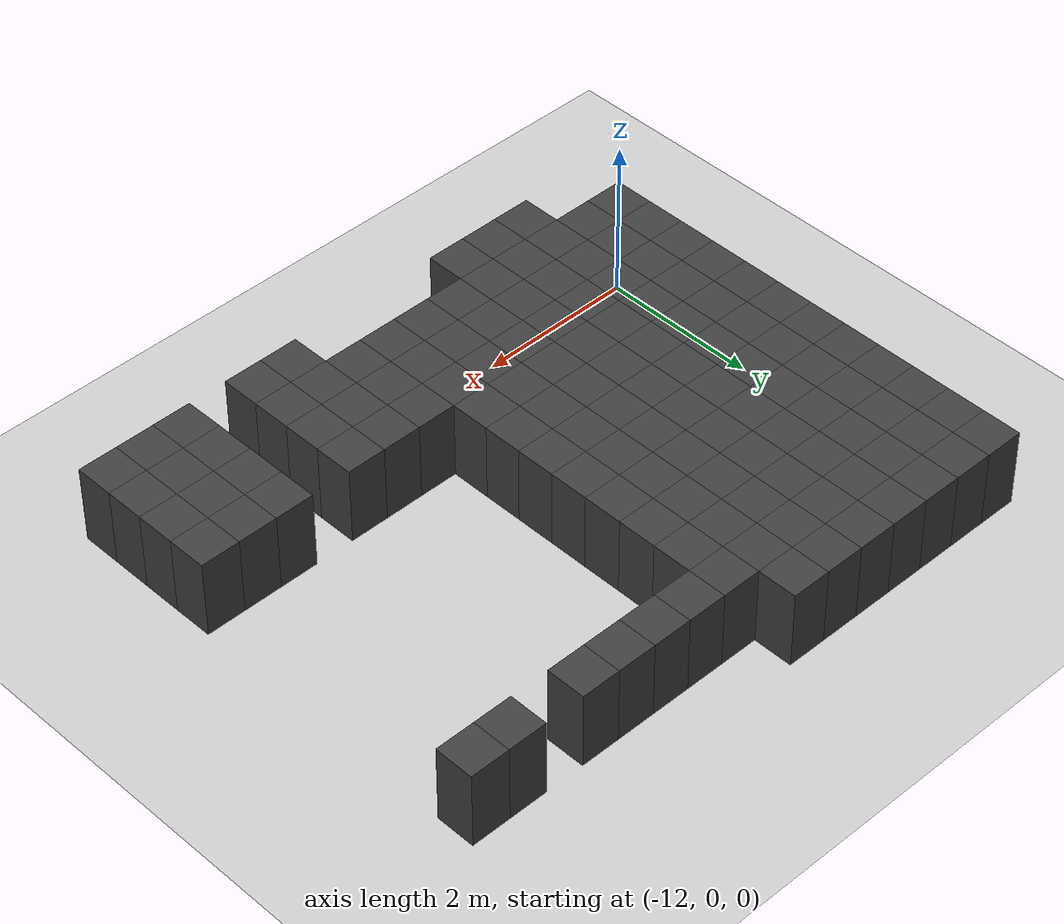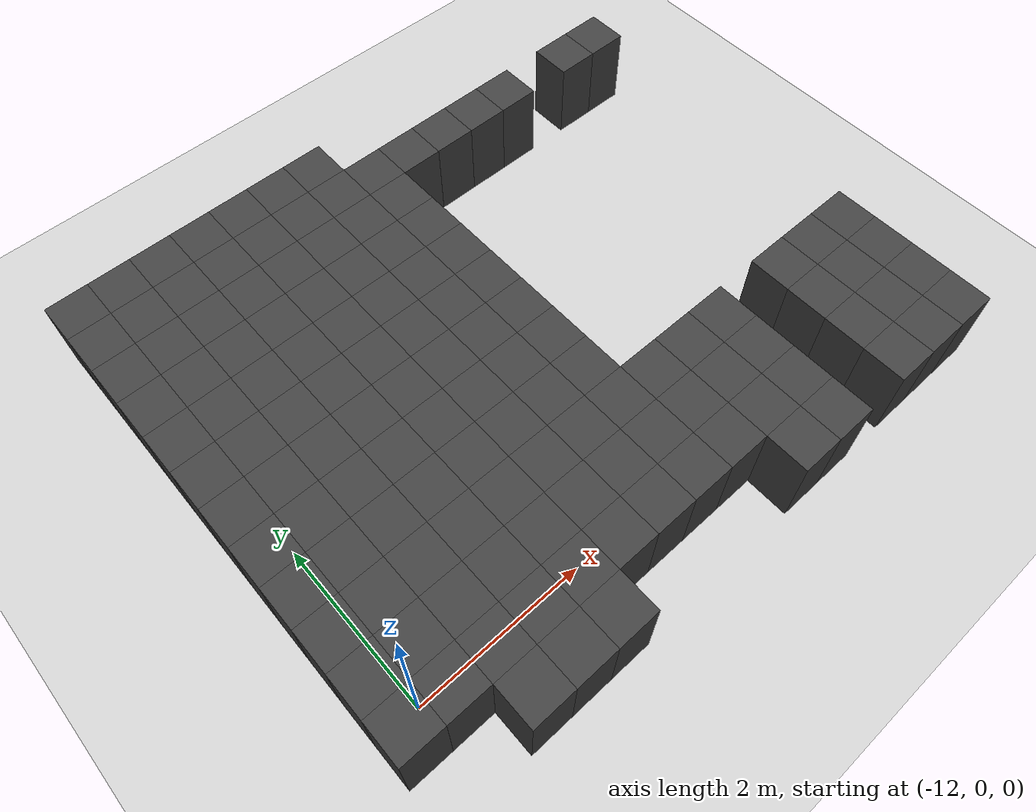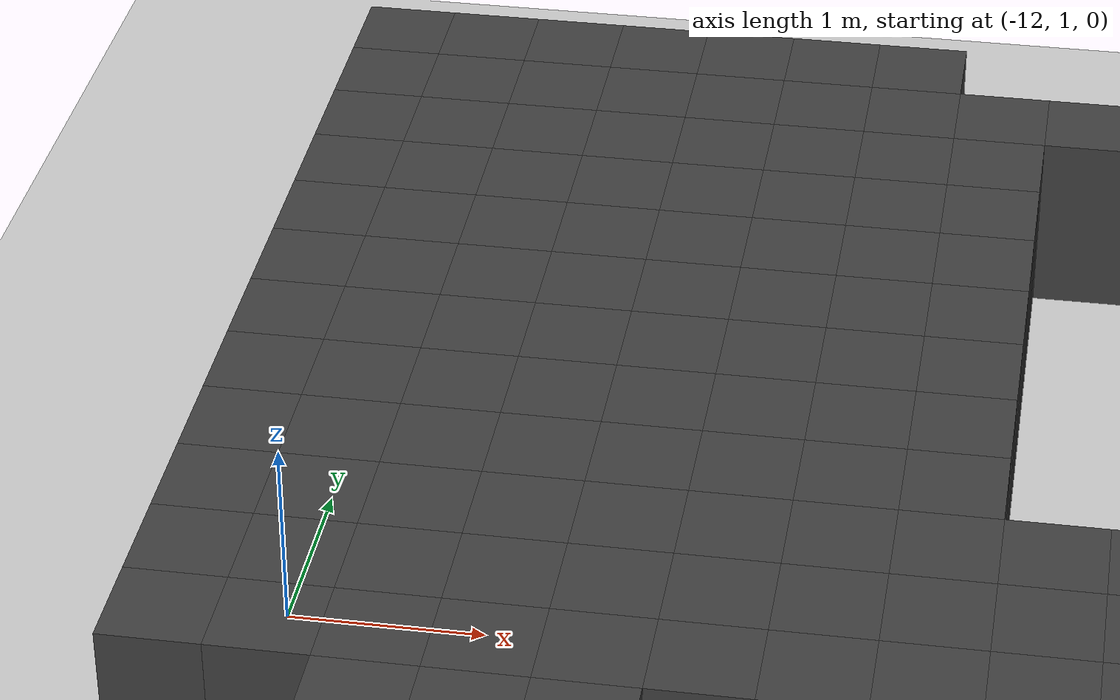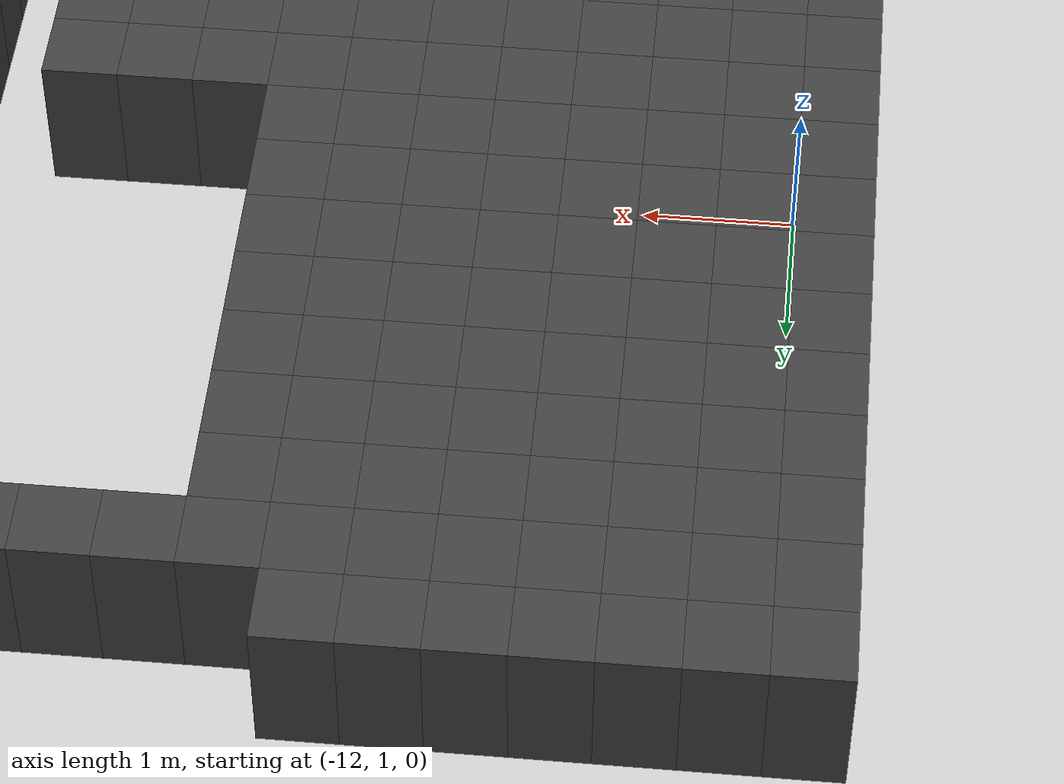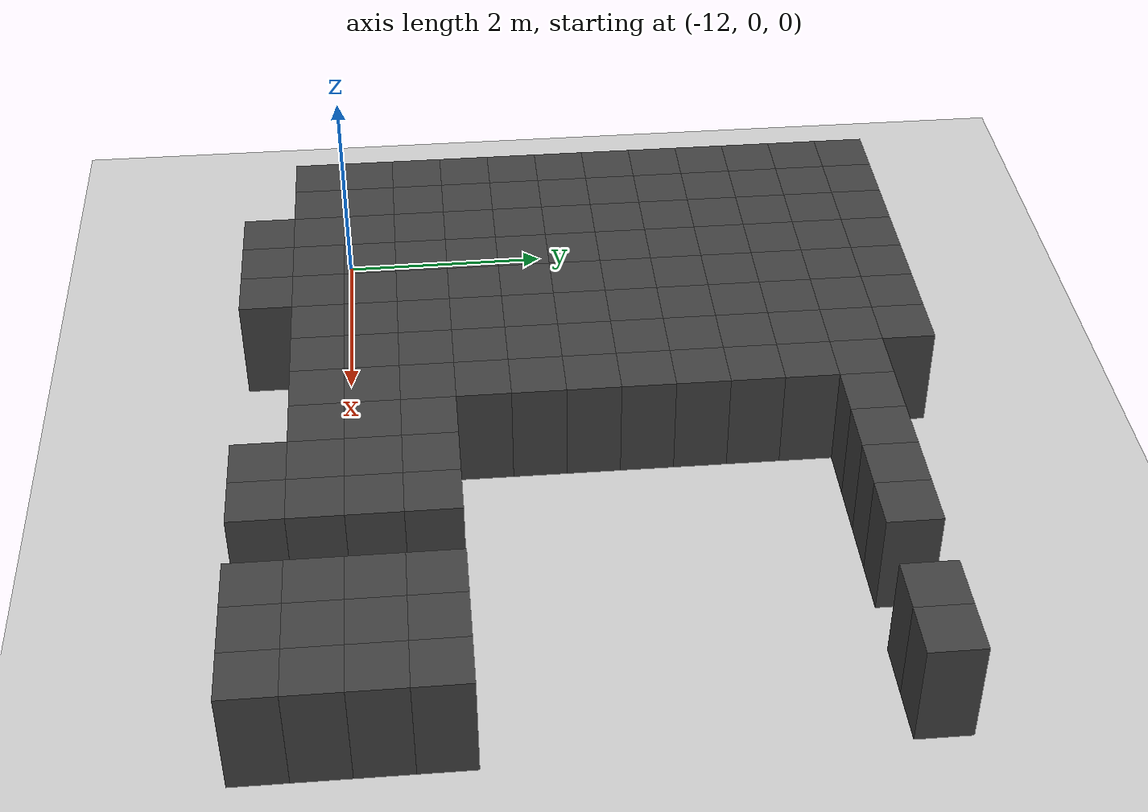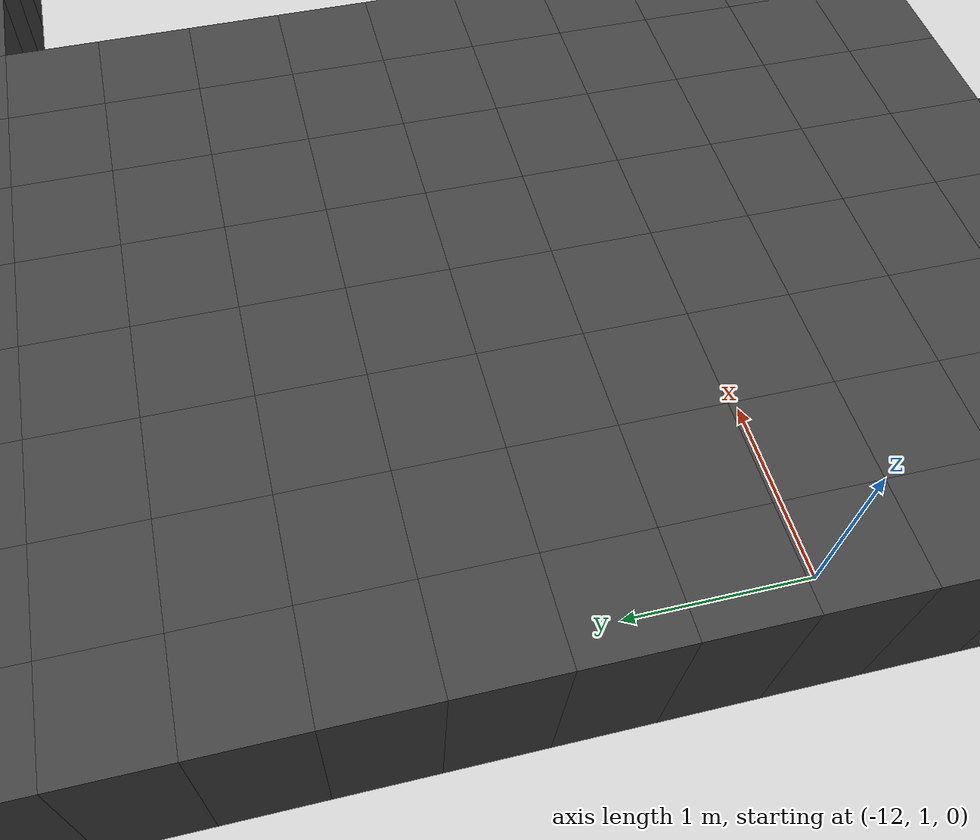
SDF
<sdf version="1.7">
 <world name="map_12356">
  <model name="ground_plane">
   <static>true</static>
   <link name="link">
    <collision name="collision">
     <geometry><plane><normal>0 0 1</normal><size>200 200</size></plane></geometry>
    </collision>
    <visual name="visual">
     <geometry><plane><normal>0 0 1</normal><size>200 200</size></plane></geometry>
     <material><ambient>0.8 0.8 0.8 1</ambient><diffuse>0.8 0.8 0.8 1</diffuse></material>
    </visual>
   </link>
  </model>
  <model name="maze_environment">
   <static>true</static>
   <link name="wall_514">
    <pose>-12.250 5.250 0.500 0 0 0</pose>
    <collision name="col"><geometry><box><size>0.5 0.5 1.0</size></box></geometry></collision>
    <visual name="vis">
     <geometry><box><size>0.5 0.5 1.0</size></box></geometry>
     <material><ambient>0.15 0.15 0.15 1</ambient><diffuse>0.25 0.25 0.25 1</diffuse></material>
    </visual>
   </link>
   <link name="wall_515">
    <pose>-11.750 5.250 0.500 0 0 0</pose>
    <collision name="col"><geometry><box><size>0.5 0.5 1.0</size></box></geometry></collision>
    <visual name="vis">
     <geometry><box><size>0.5 0.5 1.0</size></box></geometry>
     <material><ambient>0.15 0.15 0.15 1</ambient><diffuse>0.25 0.25 0.25 1</diffuse></material>
    </visual>
   </link>
   <link name="wall_516">
    <pose>-11.250 5.250 0.500 0 0 0</pose>
    <collision name="col"><geometry><box><size>0.5 0.5 1.0</size></box></geometry></collision>
    <visual name="vis">
     <geometry><box><size>0.5 0.5 1.0</size></box></geometry>
     <material><ambient>0.15 0.15 0.15 1</ambient><diffuse>0.25 0.25 0.25 1</diffuse></material>
    </visual>
   </link>
   <link name="wall_517">
    <pose>-10.750 5.250 0.500 0 0 0</pose>
    <collision name="col"><geometry><box><size>0.5 0.5 1.0</size></box></geometry></collision>
    <visual name="vis">
     <geometry><box><size>0.5 0.5 1.0</size></box></geometry>
     <material><ambient>0.15 0.15 0.15 1</ambient><diffuse>0.25 0.25 0.25 1</diffuse></material>
    </visual>
   </link>
   <link name="wall_518">
    <pose>-10.250 5.250 0.500 0 0 0</pose>
    <collision name="col"><geometry><box><size>0.5 0.5 1.0</size></box></geometry></collision>
    <visual name="vis">
     <geometry><box><size>0.5 0.5 1.0</size></box></geometry>
     <material><ambient>0.15 0.15 0.15 1</ambient><diffuse>0.25 0.25 0.25 1</diffuse></material>
    </visual>
   </link>
   <link name="wall_519">
    <pose>-9.750 5.250 0.500 0 0 0</pose>
    <collision name="col"><geometry><box><size>0.5 0.5 1.0</size></box></geometry></collision>
    <visual name="vis">
     <geometry><box><size>0.5 0.5 1.0</size></box></geometry>
     <material><ambient>0.15 0.15 0.15 1</ambient><diffuse>0.25 0.25 0.25 1</diffuse></material>
    </visual>
   </link>
   <link name="wall_520">
    <pose>-9.250 5.250 0.500 0 0 0</pose>
    <collision name="col"><geometry><box><size>0.5 0.5 1.0</size></box></geometry></collision>
    <visual name="vis">
     <geometry><box><size>0.5 0.5 1.0</size></box></geometry>
     <material><ambient>0.15 0.15 0.15 1</ambient><diffuse>0.25 0.25 0.25 1</diffuse></material>
    </visual>
   </link>
   <link name="wall_558">
    <pose>-12.250 4.750 0.500 0 0 0</pose>
    <collision name="col"><geometry><box><size>0.5 0.5 1.0</size></box></geometry></collision>
    <visual name="vis">
     <geometry><box><size>0.5 0.5 1.0</size></box></geometry>
     <material><ambient>0.15 0.15 0.15 1</ambient><diffuse>0.25 0.25 0.25 1</diffuse></material>
    </visual>
   </link>
   <link name="wall_559">
    <pose>-11.750 4.750 0.500 0 0 0</pose>
    <collision name="col"><geometry><box><size>0.5 0.5 1.0</size></box></geometry></collision>
    <visual name="vis">
     <geometry><box><size>0.5 0.5 1.0</size></box></geometry>
     <material><ambient>0.15 0.15 0.15 1</ambient><diffuse>0.25 0.25 0.25 1</diffuse></material>
    </visual>
   </link>
   <link name="wall_560">
    <pose>-11.250 4.750 0.500 0 0 0</pose>
    <collision name="col"><geometry><box><size>0.5 0.5 1.0</size></box></geometry></collision>
    <visual name="vis">
     <geometry><box><size>0.5 0.5 1.0</size></box></geometry>
     <material><ambient>0.15 0.15 0.15 1</ambient><diffuse>0.25 0.25 0.25 1</diffuse></material>
    </visual>
   </link>
   <link name="wall_561">
    <pose>-10.750 4.750 0.500 0 0 0</pose>
    <collision name="col"><geometry><box><size>0.5 0.5 1.0</size></box></geometry></collision>
    <visual name="vis">
     <geometry><box><size>0.5 0.5 1.0</size></box></geometry>
     <material><ambient>0.15 0.15 0.15 1</ambient><diffuse>0.25 0.25 0.25 1</diffuse></material>
    </visual>
   </link>
   <link name="wall_562">
    <pose>-10.250 4.750 0.500 0 0 0</pose>
    <collision name="col"><geometry><box><size>0.5 0.5 1.0</size></box></geometry></collision>
    <visual name="vis">
     <geometry><box><size>0.5 0.5 1.0</size></box></geometry>
     <material><ambient>0.15 0.15 0.15 1</ambient><diffuse>0.25 0.25 0.25 1</diffuse></material>
    </visual>
   </link>
   <link name="wall_563">
    <pose>-9.750 4.750 0.500 0 0 0</pose>
    <collision name="col"><geometry><box><size>0.5 0.5 1.0</size></box></geometry></collision>
    <visual name="vis">
     <geometry><box><size>0.5 0.5 1.0</size></box></geometry>
     <material><ambient>0.15 0.15 0.15 1</ambient><diffuse>0.25 0.25 0.25 1</diffuse></material>
    </visual>
   </link>
   <link name="wall_564">
    <pose>-9.250 4.750 0.500 0 0 0</pose>
    <collision name="col"><geometry><box><size>0.5 0.5 1.0</size></box></geometry></collision>
    <visual name="vis">
     <geometry><box><size>0.5 0.5 1.0</size></box></geometry>
     <material><ambient>0.15 0.15 0.15 1</ambient><diffuse>0.25 0.25 0.25 1</diffuse></material>
    </visual>
   </link>
   <link name="wall_565">
    <pose>-8.750 4.750 0.500 0 0 0</pose>
    <collision name="col"><geometry><box><size>0.5 0.5 1.0</size></box></geometry></collision>
    <visual name="vis">
     <geometry><box><size>0.5 0.5 1.0</size></box></geometry>
     <material><ambient>0.15 0.15 0.15 1</ambient><diffuse>0.25 0.25 0.25 1</diffuse></material>
    </visual>
   </link>
   <link name="wall_566">
    <pose>-8.250 4.750 0.500 0 0 0</pose>
    <collision name="col"><geometry><box><size>0.5 0.5 1.0</size></box></geometry></collision>
    <visual name="vis">
     <geometry><box><size>0.5 0.5 1.0</size></box></geometry>
     <material><ambient>0.15 0.15 0.15 1</ambient><diffuse>0.25 0.25 0.25 1</diffuse></material>
    </visual>
   </link>
   <link name="wall_567">
    <pose>-7.750 4.750 0.500 0 0 0</pose>
    <collision name="col"><geometry><box><size>0.5 0.5 1.0</size></box></geometry></collision>
    <visual name="vis">
     <geometry><box><size>0.5 0.5 1.0</size></box></geometry>
     <material><ambient>0.15 0.15 0.15 1</ambient><diffuse>0.25 0.25 0.25 1</diffuse></material>
    </visual>
   </link>
   <link name="wall_568">
    <pose>-7.250 4.750 0.500 0 0 0</pose>
    <collision name="col"><geometry><box><size>0.5 0.5 1.0</size></box></geometry></collision>
    <visual name="vis">
     <geometry><box><size>0.5 0.5 1.0</size></box></geometry>
     <material><ambient>0.15 0.15 0.15 1</ambient><diffuse>0.25 0.25 0.25 1</diffuse></material>
    </visual>
   </link>
   <link name="wall_569">
    <pose>-6.750 4.750 0.500 0 0 0</pose>
    <collision name="col"><geometry><box><size>0.5 0.5 1.0</size></box></geometry></collision>
    <visual name="vis">
     <geometry><box><size>0.5 0.5 1.0</size></box></geometry>
     <material><ambient>0.15 0.15 0.15 1</ambient><diffuse>0.25 0.25 0.25 1</diffuse></material>
    </visual>
   </link>
   <link name="wall_570">
    <pose>-5.750 4.750 0.500 0 0 0</pose>
    <collision name="col"><geometry><box><size>0.5 0.5 1.0</size></box></geometry></collision>
    <visual name="vis">
     <geometry><box><size>0.5 0.5 1.0</size></box></geometry>
     <material><ambient>0.15 0.15 0.15 1</ambient><diffuse>0.25 0.25 0.25 1</diffuse></material>
    </visual>
   </link>
   <link name="wall_571">
    <pose>-5.250 4.750 0.500 0 0 0</pose>
    <collision name="col"><geometry><box><size>0.5 0.5 1.0</size></box></geometry></collision>
    <visual name="vis">
     <geometry><box><size>0.5 0.5 1.0</size></box></geometry>
     <material><ambient>0.15 0.15 0.15 1</ambient><diffuse>0.25 0.25 0.25 1</diffuse></material>
    </visual>
   </link>
   <link name="wall_584">
    <pose>-12.250 4.250 0.500 0 0 0</pose>
    <collision name="col"><geometry><box><size>0.5 0.5 1.0</size></box></geometry></collision>
    <visual name="vis">
     <geometry><box><size>0.5 0.5 1.0</size></box></geometry>
     <material><ambient>0.15 0.15 0.15 1</ambient><diffuse>0.25 0.25 0.25 1</diffuse></material>
    </visual>
   </link>
   <link name="wall_585">
    <pose>-11.750 4.250 0.500 0 0 0</pose>
    <collision name="col"><geometry><box><size>0.5 0.5 1.0</size></box></geometry></collision>
    <visual name="vis">
     <geometry><box><size>0.5 0.5 1.0</size></box></geometry>
     <material><ambient>0.15 0.15 0.15 1</ambient><diffuse>0.25 0.25 0.25 1</diffuse></material>
    </visual>
   </link>
   <link name="wall_586">
    <pose>-11.250 4.250 0.500 0 0 0</pose>
    <collision name="col"><geometry><box><size>0.5 0.5 1.0</size></box></geometry></collision>
    <visual name="vis">
     <geometry><box><size>0.5 0.5 1.0</size></box></geometry>
     <material><ambient>0.15 0.15 0.15 1</ambient><diffuse>0.25 0.25 0.25 1</diffuse></material>
    </visual>
   </link>
   <link name="wall_587">
    <pose>-10.750 4.250 0.500 0 0 0</pose>
    <collision name="col"><geometry><box><size>0.5 0.5 1.0</size></box></geometry></collision>
    <visual name="vis">
     <geometry><box><size>0.5 0.5 1.0</size></box></geometry>
     <material><ambient>0.15 0.15 0.15 1</ambient><diffuse>0.25 0.25 0.25 1</diffuse></material>
    </visual>
   </link>
   <link name="wall_588">
    <pose>-10.250 4.250 0.500 0 0 0</pose>
    <collision name="col"><geometry><box><size>0.5 0.5 1.0</size></box></geometry></collision>
    <visual name="vis">
     <geometry><box><size>0.5 0.5 1.0</size></box></geometry>
     <material><ambient>0.15 0.15 0.15 1</ambient><diffuse>0.25 0.25 0.25 1</diffuse></material>
    </visual>
   </link>
   <link name="wall_589">
    <pose>-9.750 4.250 0.500 0 0 0</pose>
    <collision name="col"><geometry><box><size>0.5 0.5 1.0</size></box></geometry></collision>
    <visual name="vis">
     <geometry><box><size>0.5 0.5 1.0</size></box></geometry>
     <material><ambient>0.15 0.15 0.15 1</ambient><diffuse>0.25 0.25 0.25 1</diffuse></material>
    </visual>
   </link>
   <link name="wall_590">
    <pose>-9.250 4.250 0.500 0 0 0</pose>
    <collision name="col"><geometry><box><size>0.5 0.5 1.0</size></box></geometry></collision>
    <visual name="vis">
     <geometry><box><size>0.5 0.5 1.0</size></box></geometry>
     <material><ambient>0.15 0.15 0.15 1</ambient><diffuse>0.25 0.25 0.25 1</diffuse></material>
    </visual>
   </link>
   <link name="wall_591">
    <pose>-8.750 4.250 0.500 0 0 0</pose>
    <collision name="col"><geometry><box><size>0.5 0.5 1.0</size></box></geometry></collision>
    <visual name="vis">
     <geometry><box><size>0.5 0.5 1.0</size></box></geometry>
     <material><ambient>0.15 0.15 0.15 1</ambient><diffuse>0.25 0.25 0.25 1</diffuse></material>
    </visual>
   </link>
   <link name="wall_623">
    <pose>-12.250 3.750 0.500 0 0 0</pose>
    <collision name="col"><geometry><box><size>0.5 0.5 1.0</size></box></geometry></collision>
    <visual name="vis">
     <geometry><box><size>0.5 0.5 1.0</size></box></geometry>
     <material><ambient>0.15 0.15 0.15 1</ambient><diffuse>0.25 0.25 0.25 1</diffuse></material>
    </visual>
   </link>
   <link name="wall_624">
    <pose>-11.750 3.750 0.500 0 0 0</pose>
    <collision name="col"><geometry><box><size>0.5 0.5 1.0</size></box></geometry></collision>
    <visual name="vis">
     <geometry><box><size>0.5 0.5 1.0</size></box></geometry>
     <material><ambient>0.15 0.15 0.15 1</ambient><diffuse>0.25 0.25 0.25 1</diffuse></material>
    </visual>
   </link>
   <link name="wall_625">
    <pose>-11.250 3.750 0.500 0 0 0</pose>
    <collision name="col"><geometry><box><size>0.5 0.5 1.0</size></box></geometry></collision>
    <visual name="vis">
     <geometry><box><size>0.5 0.5 1.0</size></box></geometry>
     <material><ambient>0.15 0.15 0.15 1</ambient><diffuse>0.25 0.25 0.25 1</diffuse></material>
    </visual>
   </link>
   <link name="wall_626">
    <pose>-10.750 3.750 0.500 0 0 0</pose>
    <collision name="col"><geometry><box><size>0.5 0.5 1.0</size></box></geometry></collision>
    <visual name="vis">
     <geometry><box><size>0.5 0.5 1.0</size></box></geometry>
     <material><ambient>0.15 0.15 0.15 1</ambient><diffuse>0.25 0.25 0.25 1</diffuse></material>
    </visual>
   </link>
   <link name="wall_627">
    <pose>-10.250 3.750 0.500 0 0 0</pose>
    <collision name="col"><geometry><box><size>0.5 0.5 1.0</size></box></geometry></collision>
    <visual name="vis">
     <geometry><box><size>0.5 0.5 1.0</size></box></geometry>
     <material><ambient>0.15 0.15 0.15 1</ambient><diffuse>0.25 0.25 0.25 1</diffuse></material>
    </visual>
   </link>
   <link name="wall_628">
    <pose>-9.750 3.750 0.500 0 0 0</pose>
    <collision name="col"><geometry><box><size>0.5 0.5 1.0</size></box></geometry></collision>
    <visual name="vis">
     <geometry><box><size>0.5 0.5 1.0</size></box></geometry>
     <material><ambient>0.15 0.15 0.15 1</ambient><diffuse>0.25 0.25 0.25 1</diffuse></material>
    </visual>
   </link>
   <link name="wall_629">
    <pose>-9.250 3.750 0.500 0 0 0</pose>
    <collision name="col"><geometry><box><size>0.5 0.5 1.0</size></box></geometry></collision>
    <visual name="vis">
     <geometry><box><size>0.5 0.5 1.0</size></box></geometry>
     <material><ambient>0.15 0.15 0.15 1</ambient><diffuse>0.25 0.25 0.25 1</diffuse></material>
    </visual>
   </link>
   <link name="wall_630">
    <pose>-8.750 3.750 0.500 0 0 0</pose>
    <collision name="col"><geometry><box><size>0.5 0.5 1.0</size></box></geometry></collision>
    <visual name="vis">
     <geometry><box><size>0.5 0.5 1.0</size></box></geometry>
     <material><ambient>0.15 0.15 0.15 1</ambient><diffuse>0.25 0.25 0.25 1</diffuse></material>
    </visual>
   </link>
   <link name="wall_662">
    <pose>-12.250 3.250 0.500 0 0 0</pose>
    <collision name="col"><geometry><box><size>0.5 0.5 1.0</size></box></geometry></collision>
    <visual name="vis">
     <geometry><box><size>0.5 0.5 1.0</size></box></geometry>
     <material><ambient>0.15 0.15 0.15 1</ambient><diffuse>0.25 0.25 0.25 1</diffuse></material>
    </visual>
   </link>
   <link name="wall_663">
    <pose>-11.750 3.250 0.500 0 0 0</pose>
    <collision name="col"><geometry><box><size>0.5 0.5 1.0</size></box></geometry></collision>
    <visual name="vis">
     <geometry><box><size>0.5 0.5 1.0</size></box></geometry>
     <material><ambient>0.15 0.15 0.15 1</ambient><diffuse>0.25 0.25 0.25 1</diffuse></material>
    </visual>
   </link>
   <link name="wall_664">
    <pose>-11.250 3.250 0.500 0 0 0</pose>
    <collision name="col"><geometry><box><size>0.5 0.5 1.0</size></box></geometry></collision>
    <visual name="vis">
     <geometry><box><size>0.5 0.5 1.0</size></box></geometry>
     <material><ambient>0.15 0.15 0.15 1</ambient><diffuse>0.25 0.25 0.25 1</diffuse></material>
    </visual>
   </link>
   <link name="wall_665">
    <pose>-10.750 3.250 0.500 0 0 0</pose>
    <collision name="col"><geometry><box><size>0.5 0.5 1.0</size></box></geometry></collision>
    <visual name="vis">
     <geometry><box><size>0.5 0.5 1.0</size></box></geometry>
     <material><ambient>0.15 0.15 0.15 1</ambient><diffuse>0.25 0.25 0.25 1</diffuse></material>
    </visual>
   </link>
   <link name="wall_666">
    <pose>-10.250 3.250 0.500 0 0 0</pose>
    <collision name="col"><geometry><box><size>0.5 0.5 1.0</size></box></geometry></collision>
    <visual name="vis">
     <geometry><box><size>0.5 0.5 1.0</size></box></geometry>
     <material><ambient>0.15 0.15 0.15 1</ambient><diffuse>0.25 0.25 0.25 1</diffuse></material>
    </visual>
   </link>
   <link name="wall_667">
    <pose>-9.750 3.250 0.500 0 0 0</pose>
    <collision name="col"><geometry><box><size>0.5 0.5 1.0</size></box></geometry></collision>
    <visual name="vis">
     <geometry><box><size>0.5 0.5 1.0</size></box></geometry>
     <material><ambient>0.15 0.15 0.15 1</ambient><diffuse>0.25 0.25 0.25 1</diffuse></material>
    </visual>
   </link>
   <link name="wall_668">
    <pose>-9.250 3.250 0.500 0 0 0</pose>
    <collision name="col"><geometry><box><size>0.5 0.5 1.0</size></box></geometry></collision>
    <visual name="vis">
     <geometry><box><size>0.5 0.5 1.0</size></box></geometry>
     <material><ambient>0.15 0.15 0.15 1</ambient><diffuse>0.25 0.25 0.25 1</diffuse></material>
    </visual>
   </link>
   <link name="wall_669">
    <pose>-8.750 3.250 0.500 0 0 0</pose>
    <collision name="col"><geometry><box><size>0.5 0.5 1.0</size></box></geometry></collision>
    <visual name="vis">
     <geometry><box><size>0.5 0.5 1.0</size></box></geometry>
     <material><ambient>0.15 0.15 0.15 1</ambient><diffuse>0.25 0.25 0.25 1</diffuse></material>
    </visual>
   </link>
   <link name="wall_701">
    <pose>-12.250 2.750 0.500 0 0 0</pose>
    <collision name="col"><geometry><box><size>0.5 0.5 1.0</size></box></geometry></collision>
    <visual name="vis">
     <geometry><box><size>0.5 0.5 1.0</size></box></geometry>
     <material><ambient>0.15 0.15 0.15 1</ambient><diffuse>0.25 0.25 0.25 1</diffuse></material>
    </visual>
   </link>
   <link name="wall_702">
    <pose>-11.750 2.750 0.500 0 0 0</pose>
    <collision name="col"><geometry><box><size>0.5 0.5 1.0</size></box></geometry></collision>
    <visual name="vis">
     <geometry><box><size>0.5 0.5 1.0</size></box></geometry>
     <material><ambient>0.15 0.15 0.15 1</ambient><diffuse>0.25 0.25 0.25 1</diffuse></material>
    </visual>
   </link>
   <link name="wall_703">
    <pose>-11.250 2.750 0.500 0 0 0</pose>
    <collision name="col"><geometry><box><size>0.5 0.5 1.0</size></box></geometry></collision>
    <visual name="vis">
     <geometry><box><size>0.5 0.5 1.0</size></box></geometry>
     <material><ambient>0.15 0.15 0.15 1</ambient><diffuse>0.25 0.25 0.25 1</diffuse></material>
    </visual>
   </link>
   <link name="wall_704">
    <pose>-10.750 2.750 0.500 0 0 0</pose>
    <collision name="col"><geometry><box><size>0.5 0.5 1.0</size></box></geometry></collision>
    <visual name="vis">
     <geometry><box><size>0.5 0.5 1.0</size></box></geometry>
     <material><ambient>0.15 0.15 0.15 1</ambient><diffuse>0.25 0.25 0.25 1</diffuse></material>
    </visual>
   </link>
   <link name="wall_705">
    <pose>-10.250 2.750 0.500 0 0 0</pose>
    <collision name="col"><geometry><box><size>0.5 0.5 1.0</size></box></geometry></collision>
    <visual name="vis">
     <geometry><box><size>0.5 0.5 1.0</size></box></geometry>
     <material><ambient>0.15 0.15 0.15 1</ambient><diffuse>0.25 0.25 0.25 1</diffuse></material>
    </visual>
   </link>
   <link name="wall_706">
    <pose>-9.750 2.750 0.500 0 0 0</pose>
    <collision name="col"><geometry><box><size>0.5 0.5 1.0</size></box></geometry></collision>
    <visual name="vis">
     <geometry><box><size>0.5 0.5 1.0</size></box></geometry>
     <material><ambient>0.15 0.15 0.15 1</ambient><diffuse>0.25 0.25 0.25 1</diffuse></material>
    </visual>
   </link>
   <link name="wall_707">
    <pose>-9.250 2.750 0.500 0 0 0</pose>
    <collision name="col"><geometry><box><size>0.5 0.5 1.0</size></box></geometry></collision>
    <visual name="vis">
     <geometry><box><size>0.5 0.5 1.0</size></box></geometry>
     <material><ambient>0.15 0.15 0.15 1</ambient><diffuse>0.25 0.25 0.25 1</diffuse></material>
    </visual>
   </link>
   <link name="wall_708">
    <pose>-8.750 2.750 0.500 0 0 0</pose>
    <collision name="col"><geometry><box><size>0.5 0.5 1.0</size></box></geometry></collision>
    <visual name="vis">
     <geometry><box><size>0.5 0.5 1.0</size></box></geometry>
     <material><ambient>0.15 0.15 0.15 1</ambient><diffuse>0.25 0.25 0.25 1</diffuse></material>
    </visual>
   </link>
   <link name="wall_743">
    <pose>-12.250 2.250 0.500 0 0 0</pose>
    <collision name="col"><geometry><box><size>0.5 0.5 1.0</size></box></geometry></collision>
    <visual name="vis">
     <geometry><box><size>0.5 0.5 1.0</size></box></geometry>
     <material><ambient>0.15 0.15 0.15 1</ambient><diffuse>0.25 0.25 0.25 1</diffuse></material>
    </visual>
   </link>
   <link name="wall_744">
    <pose>-11.750 2.250 0.500 0 0 0</pose>
    <collision name="col"><geometry><box><size>0.5 0.5 1.0</size></box></geometry></collision>
    <visual name="vis">
     <geometry><box><size>0.5 0.5 1.0</size></box></geometry>
     <material><ambient>0.15 0.15 0.15 1</ambient><diffuse>0.25 0.25 0.25 1</diffuse></material>
    </visual>
   </link>
   <link name="wall_745">
    <pose>-11.250 2.250 0.500 0 0 0</pose>
    <collision name="col"><geometry><box><size>0.5 0.5 1.0</size></box></geometry></collision>
    <visual name="vis">
     <geometry><box><size>0.5 0.5 1.0</size></box></geometry>
     <material><ambient>0.15 0.15 0.15 1</ambient><diffuse>0.25 0.25 0.25 1</diffuse></material>
    </visual>
   </link>
   <link name="wall_746">
    <pose>-10.750 2.250 0.500 0 0 0</pose>
    <collision name="col"><geometry><box><size>0.5 0.5 1.0</size></box></geometry></collision>
    <visual name="vis">
     <geometry><box><size>0.5 0.5 1.0</size></box></geometry>
     <material><ambient>0.15 0.15 0.15 1</ambient><diffuse>0.25 0.25 0.25 1</diffuse></material>
    </visual>
   </link>
   <link name="wall_747">
    <pose>-10.250 2.250 0.500 0 0 0</pose>
    <collision name="col"><geometry><box><size>0.5 0.5 1.0</size></box></geometry></collision>
    <visual name="vis">
     <geometry><box><size>0.5 0.5 1.0</size></box></geometry>
     <material><ambient>0.15 0.15 0.15 1</ambient><diffuse>0.25 0.25 0.25 1</diffuse></material>
    </visual>
   </link>
   <link name="wall_748">
    <pose>-9.750 2.250 0.500 0 0 0</pose>
    <collision name="col"><geometry><box><size>0.5 0.5 1.0</size></box></geometry></collision>
    <visual name="vis">
     <geometry><box><size>0.5 0.5 1.0</size></box></geometry>
     <material><ambient>0.15 0.15 0.15 1</ambient><diffuse>0.25 0.25 0.25 1</diffuse></material>
    </visual>
   </link>
   <link name="wall_749">
    <pose>-9.250 2.250 0.500 0 0 0</pose>
    <collision name="col"><geometry><box><size>0.5 0.5 1.0</size></box></geometry></collision>
    <visual name="vis">
     <geometry><box><size>0.5 0.5 1.0</size></box></geometry>
     <material><ambient>0.15 0.15 0.15 1</ambient><diffuse>0.25 0.25 0.25 1</diffuse></material>
    </visual>
   </link>
   <link name="wall_750">
    <pose>-8.750 2.250 0.500 0 0 0</pose>
    <collision name="col"><geometry><box><size>0.5 0.5 1.0</size></box></geometry></collision>
    <visual name="vis">
     <geometry><box><size>0.5 0.5 1.0</size></box></geometry>
     <material><ambient>0.15 0.15 0.15 1</ambient><diffuse>0.25 0.25 0.25 1</diffuse></material>
    </visual>
   </link>
   <link name="wall_785">
    <pose>-12.250 1.750 0.500 0 0 0</pose>
    <collision name="col"><geometry><box><size>0.5 0.5 1.0</size></box></geometry></collision>
    <visual name="vis">
     <geometry><box><size>0.5 0.5 1.0</size></box></geometry>
     <material><ambient>0.15 0.15 0.15 1</ambient><diffuse>0.25 0.25 0.25 1</diffuse></material>
    </visual>
   </link>
   <link name="wall_786">
    <pose>-11.750 1.750 0.500 0 0 0</pose>
    <collision name="col"><geometry><box><size>0.5 0.5 1.0</size></box></geometry></collision>
    <visual name="vis">
     <geometry><box><size>0.5 0.5 1.0</size></box></geometry>
     <material><ambient>0.15 0.15 0.15 1</ambient><diffuse>0.25 0.25 0.25 1</diffuse></material>
    </visual>
   </link>
   <link name="wall_787">
    <pose>-11.250 1.750 0.500 0 0 0</pose>
    <collision name="col"><geometry><box><size>0.5 0.5 1.0</size></box></geometry></collision>
    <visual name="vis">
     <geometry><box><size>0.5 0.5 1.0</size></box></geometry>
     <material><ambient>0.15 0.15 0.15 1</ambient><diffuse>0.25 0.25 0.25 1</diffuse></material>
    </visual>
   </link>
   <link name="wall_788">
    <pose>-10.750 1.750 0.500 0 0 0</pose>
    <collision name="col"><geometry><box><size>0.5 0.5 1.0</size></box></geometry></collision>
    <visual name="vis">
     <geometry><box><size>0.5 0.5 1.0</size></box></geometry>
     <material><ambient>0.15 0.15 0.15 1</ambient><diffuse>0.25 0.25 0.25 1</diffuse></material>
    </visual>
   </link>
   <link name="wall_789">
    <pose>-10.250 1.750 0.500 0 0 0</pose>
    <collision name="col"><geometry><box><size>0.5 0.5 1.0</size></box></geometry></collision>
    <visual name="vis">
     <geometry><box><size>0.5 0.5 1.0</size></box></geometry>
     <material><ambient>0.15 0.15 0.15 1</ambient><diffuse>0.25 0.25 0.25 1</diffuse></material>
    </visual>
   </link>
   <link name="wall_790">
    <pose>-9.750 1.750 0.500 0 0 0</pose>
    <collision name="col"><geometry><box><size>0.5 0.5 1.0</size></box></geometry></collision>
    <visual name="vis">
     <geometry><box><size>0.5 0.5 1.0</size></box></geometry>
     <material><ambient>0.15 0.15 0.15 1</ambient><diffuse>0.25 0.25 0.25 1</diffuse></material>
    </visual>
   </link>
   <link name="wall_791">
    <pose>-9.250 1.750 0.500 0 0 0</pose>
    <collision name="col"><geometry><box><size>0.5 0.5 1.0</size></box></geometry></collision>
    <visual name="vis">
     <geometry><box><size>0.5 0.5 1.0</size></box></geometry>
     <material><ambient>0.15 0.15 0.15 1</ambient><diffuse>0.25 0.25 0.25 1</diffuse></material>
    </visual>
   </link>
   <link name="wall_792">
    <pose>-8.750 1.750 0.500 0 0 0</pose>
    <collision name="col"><geometry><box><size>0.5 0.5 1.0</size></box></geometry></collision>
    <visual name="vis">
     <geometry><box><size>0.5 0.5 1.0</size></box></geometry>
     <material><ambient>0.15 0.15 0.15 1</ambient><diffuse>0.25 0.25 0.25 1</diffuse></material>
    </visual>
   </link>
   <link name="wall_827">
    <pose>-12.250 1.250 0.500 0 0 0</pose>
    <collision name="col"><geometry><box><size>0.5 0.5 1.0</size></box></geometry></collision>
    <visual name="vis">
     <geometry><box><size>0.5 0.5 1.0</size></box></geometry>
     <material><ambient>0.15 0.15 0.15 1</ambient><diffuse>0.25 0.25 0.25 1</diffuse></material>
    </visual>
   </link>
   <link name="wall_828">
    <pose>-11.750 1.250 0.500 0 0 0</pose>
    <collision name="col"><geometry><box><size>0.5 0.5 1.0</size></box></geometry></collision>
    <visual name="vis">
     <geometry><box><size>0.5 0.5 1.0</size></box></geometry>
     <material><ambient>0.15 0.15 0.15 1</ambient><diffuse>0.25 0.25 0.25 1</diffuse></material>
    </visual>
   </link>
   <link name="wall_829">
    <pose>-11.250 1.250 0.500 0 0 0</pose>
    <collision name="col"><geometry><box><size>0.5 0.5 1.0</size></box></geometry></collision>
    <visual name="vis">
     <geometry><box><size>0.5 0.5 1.0</size></box></geometry>
     <material><ambient>0.15 0.15 0.15 1</ambient><diffuse>0.25 0.25 0.25 1</diffuse></material>
    </visual>
   </link>
   <link name="wall_830">
    <pose>-10.750 1.250 0.500 0 0 0</pose>
    <collision name="col"><geometry><box><size>0.5 0.5 1.0</size></box></geometry></collision>
    <visual name="vis">
     <geometry><box><size>0.5 0.5 1.0</size></box></geometry>
     <material><ambient>0.15 0.15 0.15 1</ambient><diffuse>0.25 0.25 0.25 1</diffuse></material>
    </visual>
   </link>
   <link name="wall_831">
    <pose>-10.250 1.250 0.500 0 0 0</pose>
    <collision name="col"><geometry><box><size>0.5 0.5 1.0</size></box></geometry></collision>
    <visual name="vis">
     <geometry><box><size>0.5 0.5 1.0</size></box></geometry>
     <material><ambient>0.15 0.15 0.15 1</ambient><diffuse>0.25 0.25 0.25 1</diffuse></material>
    </visual>
   </link>
   <link name="wall_832">
    <pose>-9.750 1.250 0.500 0 0 0</pose>
    <collision name="col"><geometry><box><size>0.5 0.5 1.0</size></box></geometry></collision>
    <visual name="vis">
     <geometry><box><size>0.5 0.5 1.0</size></box></geometry>
     <material><ambient>0.15 0.15 0.15 1</ambient><diffuse>0.25 0.25 0.25 1</diffuse></material>
    </visual>
   </link>
   <link name="wall_833">
    <pose>-9.250 1.250 0.500 0 0 0</pose>
    <collision name="col"><geometry><box><size>0.5 0.5 1.0</size></box></geometry></collision>
    <visual name="vis">
     <geometry><box><size>0.5 0.5 1.0</size></box></geometry>
     <material><ambient>0.15 0.15 0.15 1</ambient><diffuse>0.25 0.25 0.25 1</diffuse></material>
    </visual>
   </link>
   <link name="wall_834">
    <pose>-8.750 1.250 0.500 0 0 0</pose>
    <collision name="col"><geometry><box><size>0.5 0.5 1.0</size></box></geometry></collision>
    <visual name="vis">
     <geometry><box><size>0.5 0.5 1.0</size></box></geometry>
     <material><ambient>0.15 0.15 0.15 1</ambient><diffuse>0.25 0.25 0.25 1</diffuse></material>
    </visual>
   </link>
   <link name="wall_869">
    <pose>-12.250 0.750 0.500 0 0 0</pose>
    <collision name="col"><geometry><box><size>0.5 0.5 1.0</size></box></geometry></collision>
    <visual name="vis">
     <geometry><box><size>0.5 0.5 1.0</size></box></geometry>
     <material><ambient>0.15 0.15 0.15 1</ambient><diffuse>0.25 0.25 0.25 1</diffuse></material>
    </visual>
   </link>
   <link name="wall_870">
    <pose>-11.750 0.750 0.500 0 0 0</pose>
    <collision name="col"><geometry><box><size>0.5 0.5 1.0</size></box></geometry></collision>
    <visual name="vis">
     <geometry><box><size>0.5 0.5 1.0</size></box></geometry>
     <material><ambient>0.15 0.15 0.15 1</ambient><diffuse>0.25 0.25 0.25 1</diffuse></material>
    </visual>
   </link>
   <link name="wall_871">
    <pose>-11.250 0.750 0.500 0 0 0</pose>
    <collision name="col"><geometry><box><size>0.5 0.5 1.0</size></box></geometry></collision>
    <visual name="vis">
     <geometry><box><size>0.5 0.5 1.0</size></box></geometry>
     <material><ambient>0.15 0.15 0.15 1</ambient><diffuse>0.25 0.25 0.25 1</diffuse></material>
    </visual>
   </link>
   <link name="wall_872">
    <pose>-10.750 0.750 0.500 0 0 0</pose>
    <collision name="col"><geometry><box><size>0.5 0.5 1.0</size></box></geometry></collision>
    <visual name="vis">
     <geometry><box><size>0.5 0.5 1.0</size></box></geometry>
     <material><ambient>0.15 0.15 0.15 1</ambient><diffuse>0.25 0.25 0.25 1</diffuse></material>
    </visual>
   </link>
   <link name="wall_873">
    <pose>-10.250 0.750 0.500 0 0 0</pose>
    <collision name="col"><geometry><box><size>0.5 0.5 1.0</size></box></geometry></collision>
    <visual name="vis">
     <geometry><box><size>0.5 0.5 1.0</size></box></geometry>
     <material><ambient>0.15 0.15 0.15 1</ambient><diffuse>0.25 0.25 0.25 1</diffuse></material>
    </visual>
   </link>
   <link name="wall_874">
    <pose>-9.750 0.750 0.500 0 0 0</pose>
    <collision name="col"><geometry><box><size>0.5 0.5 1.0</size></box></geometry></collision>
    <visual name="vis">
     <geometry><box><size>0.5 0.5 1.0</size></box></geometry>
     <material><ambient>0.15 0.15 0.15 1</ambient><diffuse>0.25 0.25 0.25 1</diffuse></material>
    </visual>
   </link>
   <link name="wall_875">
    <pose>-9.250 0.750 0.500 0 0 0</pose>
    <collision name="col"><geometry><box><size>0.5 0.5 1.0</size></box></geometry></collision>
    <visual name="vis">
     <geometry><box><size>0.5 0.5 1.0</size></box></geometry>
     <material><ambient>0.15 0.15 0.15 1</ambient><diffuse>0.25 0.25 0.25 1</diffuse></material>
    </visual>
   </link>
   <link name="wall_876">
    <pose>-8.750 0.750 0.500 0 0 0</pose>
    <collision name="col"><geometry><box><size>0.5 0.5 1.0</size></box></geometry></collision>
    <visual name="vis">
     <geometry><box><size>0.5 0.5 1.0</size></box></geometry>
     <material><ambient>0.15 0.15 0.15 1</ambient><diffuse>0.25 0.25 0.25 1</diffuse></material>
    </visual>
   </link>
   <link name="wall_877">
    <pose>-8.250 0.750 0.500 0 0 0</pose>
    <collision name="col"><geometry><box><size>0.5 0.5 1.0</size></box></geometry></collision>
    <visual name="vis">
     <geometry><box><size>0.5 0.5 1.0</size></box></geometry>
     <material><ambient>0.15 0.15 0.15 1</ambient><diffuse>0.25 0.25 0.25 1</diffuse></material>
    </visual>
   </link>
   <link name="wall_878">
    <pose>-7.750 0.750 0.500 0 0 0</pose>
    <collision name="col"><geometry><box><size>0.5 0.5 1.0</size></box></geometry></collision>
    <visual name="vis">
     <geometry><box><size>0.5 0.5 1.0</size></box></geometry>
     <material><ambient>0.15 0.15 0.15 1</ambient><diffuse>0.25 0.25 0.25 1</diffuse></material>
    </visual>
   </link>
   <link name="wall_879">
    <pose>-7.250 0.750 0.500 0 0 0</pose>
    <collision name="col"><geometry><box><size>0.5 0.5 1.0</size></box></geometry></collision>
    <visual name="vis">
     <geometry><box><size>0.5 0.5 1.0</size></box></geometry>
     <material><ambient>0.15 0.15 0.15 1</ambient><diffuse>0.25 0.25 0.25 1</diffuse></material>
    </visual>
   </link>
   <link name="wall_880">
    <pose>-6.250 0.750 0.500 0 0 0</pose>
    <collision name="col"><geometry><box><size>0.5 0.5 1.0</size></box></geometry></collision>
    <visual name="vis">
     <geometry><box><size>0.5 0.5 1.0</size></box></geometry>
     <material><ambient>0.15 0.15 0.15 1</ambient><diffuse>0.25 0.25 0.25 1</diffuse></material>
    </visual>
   </link>
   <link name="wall_881">
    <pose>-5.750 0.750 0.500 0 0 0</pose>
    <collision name="col"><geometry><box><size>0.5 0.5 1.0</size></box></geometry></collision>
    <visual name="vis">
     <geometry><box><size>0.5 0.5 1.0</size></box></geometry>
     <material><ambient>0.15 0.15 0.15 1</ambient><diffuse>0.25 0.25 0.25 1</diffuse></material>
    </visual>
   </link>
   <link name="wall_882">
    <pose>-5.250 0.750 0.500 0 0 0</pose>
    <collision name="col"><geometry><box><size>0.5 0.5 1.0</size></box></geometry></collision>
    <visual name="vis">
     <geometry><box><size>0.5 0.5 1.0</size></box></geometry>
     <material><ambient>0.15 0.15 0.15 1</ambient><diffuse>0.25 0.25 0.25 1</diffuse></material>
    </visual>
   </link>
   <link name="wall_917">
    <pose>-12.250 0.250 0.500 0 0 0</pose>
    <collision name="col"><geometry><box><size>0.5 0.5 1.0</size></box></geometry></collision>
    <visual name="vis">
     <geometry><box><size>0.5 0.5 1.0</size></box></geometry>
     <material><ambient>0.15 0.15 0.15 1</ambient><diffuse>0.25 0.25 0.25 1</diffuse></material>
    </visual>
   </link>
   <link name="wall_918">
    <pose>-11.750 0.250 0.500 0 0 0</pose>
    <collision name="col"><geometry><box><size>0.5 0.5 1.0</size></box></geometry></collision>
    <visual name="vis">
     <geometry><box><size>0.5 0.5 1.0</size></box></geometry>
     <material><ambient>0.15 0.15 0.15 1</ambient><diffuse>0.25 0.25 0.25 1</diffuse></material>
    </visual>
   </link>
   <link name="wall_919">
    <pose>-11.250 0.250 0.500 0 0 0</pose>
    <collision name="col"><geometry><box><size>0.5 0.5 1.0</size></box></geometry></collision>
    <visual name="vis">
     <geometry><box><size>0.5 0.5 1.0</size></box></geometry>
     <material><ambient>0.15 0.15 0.15 1</ambient><diffuse>0.25 0.25 0.25 1</diffuse></material>
    </visual>
   </link>
   <link name="wall_920">
    <pose>-10.750 0.250 0.500 0 0 0</pose>
    <collision name="col"><geometry><box><size>0.5 0.5 1.0</size></box></geometry></collision>
    <visual name="vis">
     <geometry><box><size>0.5 0.5 1.0</size></box></geometry>
     <material><ambient>0.15 0.15 0.15 1</ambient><diffuse>0.25 0.25 0.25 1</diffuse></material>
    </visual>
   </link>
   <link name="wall_921">
    <pose>-10.250 0.250 0.500 0 0 0</pose>
    <collision name="col"><geometry><box><size>0.5 0.5 1.0</size></box></geometry></collision>
    <visual name="vis">
     <geometry><box><size>0.5 0.5 1.0</size></box></geometry>
     <material><ambient>0.15 0.15 0.15 1</ambient><diffuse>0.25 0.25 0.25 1</diffuse></material>
    </visual>
   </link>
   <link name="wall_922">
    <pose>-9.750 0.250 0.500 0 0 0</pose>
    <collision name="col"><geometry><box><size>0.5 0.5 1.0</size></box></geometry></collision>
    <visual name="vis">
     <geometry><box><size>0.5 0.5 1.0</size></box></geometry>
     <material><ambient>0.15 0.15 0.15 1</ambient><diffuse>0.25 0.25 0.25 1</diffuse></material>
    </visual>
   </link>
   <link name="wall_923">
    <pose>-9.250 0.250 0.500 0 0 0</pose>
    <collision name="col"><geometry><box><size>0.5 0.5 1.0</size></box></geometry></collision>
    <visual name="vis">
     <geometry><box><size>0.5 0.5 1.0</size></box></geometry>
     <material><ambient>0.15 0.15 0.15 1</ambient><diffuse>0.25 0.25 0.25 1</diffuse></material>
    </visual>
   </link>
   <link name="wall_924">
    <pose>-8.750 0.250 0.500 0 0 0</pose>
    <collision name="col"><geometry><box><size>0.5 0.5 1.0</size></box></geometry></collision>
    <visual name="vis">
     <geometry><box><size>0.5 0.5 1.0</size></box></geometry>
     <material><ambient>0.15 0.15 0.15 1</ambient><diffuse>0.25 0.25 0.25 1</diffuse></material>
    </visual>
   </link>
   <link name="wall_925">
    <pose>-8.250 0.250 0.500 0 0 0</pose>
    <collision name="col"><geometry><box><size>0.5 0.5 1.0</size></box></geometry></collision>
    <visual name="vis">
     <geometry><box><size>0.5 0.5 1.0</size></box></geometry>
     <material><ambient>0.15 0.15 0.15 1</ambient><diffuse>0.25 0.25 0.25 1</diffuse></material>
    </visual>
   </link>
   <link name="wall_926">
    <pose>-7.750 0.250 0.500 0 0 0</pose>
    <collision name="col"><geometry><box><size>0.5 0.5 1.0</size></box></geometry></collision>
    <visual name="vis">
     <geometry><box><size>0.5 0.5 1.0</size></box></geometry>
     <material><ambient>0.15 0.15 0.15 1</ambient><diffuse>0.25 0.25 0.25 1</diffuse></material>
    </visual>
   </link>
   <link name="wall_927">
    <pose>-7.250 0.250 0.500 0 0 0</pose>
    <collision name="col"><geometry><box><size>0.5 0.5 1.0</size></box></geometry></collision>
    <visual name="vis">
     <geometry><box><size>0.5 0.5 1.0</size></box></geometry>
     <material><ambient>0.15 0.15 0.15 1</ambient><diffuse>0.25 0.25 0.25 1</diffuse></material>
    </visual>
   </link>
   <link name="wall_928">
    <pose>-6.250 0.250 0.500 0 0 0</pose>
    <collision name="col"><geometry><box><size>0.5 0.5 1.0</size></box></geometry></collision>
    <visual name="vis">
     <geometry><box><size>0.5 0.5 1.0</size></box></geometry>
     <material><ambient>0.15 0.15 0.15 1</ambient><diffuse>0.25 0.25 0.25 1</diffuse></material>
    </visual>
   </link>
   <link name="wall_929">
    <pose>-5.750 0.250 0.500 0 0 0</pose>
    <collision name="col"><geometry><box><size>0.5 0.5 1.0</size></box></geometry></collision>
    <visual name="vis">
     <geometry><box><size>0.5 0.5 1.0</size></box></geometry>
     <material><ambient>0.15 0.15 0.15 1</ambient><diffuse>0.25 0.25 0.25 1</diffuse></material>
    </visual>
   </link>
   <link name="wall_930">
    <pose>-5.250 0.250 0.500 0 0 0</pose>
    <collision name="col"><geometry><box><size>0.5 0.5 1.0</size></box></geometry></collision>
    <visual name="vis">
     <geometry><box><size>0.5 0.5 1.0</size></box></geometry>
     <material><ambient>0.15 0.15 0.15 1</ambient><diffuse>0.25 0.25 0.25 1</diffuse></material>
    </visual>
   </link>
   <link name="wall_965">
    <pose>-12.250 -0.250 0.500 0 0 0</pose>
    <collision name="col"><geometry><box><size>0.5 0.5 1.0</size></box></geometry></collision>
    <visual name="vis">
     <geometry><box><size>0.5 0.5 1.0</size></box></geometry>
     <material><ambient>0.15 0.15 0.15 1</ambient><diffuse>0.25 0.25 0.25 1</diffuse></material>
    </visual>
   </link>
   <link name="wall_966">
    <pose>-11.750 -0.250 0.500 0 0 0</pose>
    <collision name="col"><geometry><box><size>0.5 0.5 1.0</size></box></geometry></collision>
    <visual name="vis">
     <geometry><box><size>0.5 0.5 1.0</size></box></geometry>
     <material><ambient>0.15 0.15 0.15 1</ambient><diffuse>0.25 0.25 0.25 1</diffuse></material>
    </visual>
   </link>
   <link name="wall_967">
    <pose>-11.250 -0.250 0.500 0 0 0</pose>
    <collision name="col"><geometry><box><size>0.5 0.5 1.0</size></box></geometry></collision>
    <visual name="vis">
     <geometry><box><size>0.5 0.5 1.0</size></box></geometry>
     <material><ambient>0.15 0.15 0.15 1</ambient><diffuse>0.25 0.25 0.25 1</diffuse></material>
    </visual>
   </link>
   <link name="wall_968">
    <pose>-10.750 -0.250 0.500 0 0 0</pose>
    <collision name="col"><geometry><box><size>0.5 0.5 1.0</size></box></geometry></collision>
    <visual name="vis">
     <geometry><box><size>0.5 0.5 1.0</size></box></geometry>
     <material><ambient>0.15 0.15 0.15 1</ambient><diffuse>0.25 0.25 0.25 1</diffuse></material>
    </visual>
   </link>
   <link name="wall_969">
    <pose>-10.250 -0.250 0.500 0 0 0</pose>
    <collision name="col"><geometry><box><size>0.5 0.5 1.0</size></box></geometry></collision>
    <visual name="vis">
     <geometry><box><size>0.5 0.5 1.0</size></box></geometry>
     <material><ambient>0.15 0.15 0.15 1</ambient><diffuse>0.25 0.25 0.25 1</diffuse></material>
    </visual>
   </link>
   <link name="wall_970">
    <pose>-9.750 -0.250 0.500 0 0 0</pose>
    <collision name="col"><geometry><box><size>0.5 0.5 1.0</size></box></geometry></collision>
    <visual name="vis">
     <geometry><box><size>0.5 0.5 1.0</size></box></geometry>
     <material><ambient>0.15 0.15 0.15 1</ambient><diffuse>0.25 0.25 0.25 1</diffuse></material>
    </visual>
   </link>
   <link name="wall_971">
    <pose>-9.250 -0.250 0.500 0 0 0</pose>
    <collision name="col"><geometry><box><size>0.5 0.5 1.0</size></box></geometry></collision>
    <visual name="vis">
     <geometry><box><size>0.5 0.5 1.0</size></box></geometry>
     <material><ambient>0.15 0.15 0.15 1</ambient><diffuse>0.25 0.25 0.25 1</diffuse></material>
    </visual>
   </link>
   <link name="wall_972">
    <pose>-8.750 -0.250 0.500 0 0 0</pose>
    <collision name="col"><geometry><box><size>0.5 0.5 1.0</size></box></geometry></collision>
    <visual name="vis">
     <geometry><box><size>0.5 0.5 1.0</size></box></geometry>
     <material><ambient>0.15 0.15 0.15 1</ambient><diffuse>0.25 0.25 0.25 1</diffuse></material>
    </visual>
   </link>
   <link name="wall_973">
    <pose>-8.250 -0.250 0.500 0 0 0</pose>
    <collision name="col"><geometry><box><size>0.5 0.5 1.0</size></box></geometry></collision>
    <visual name="vis">
     <geometry><box><size>0.5 0.5 1.0</size></box></geometry>
     <material><ambient>0.15 0.15 0.15 1</ambient><diffuse>0.25 0.25 0.25 1</diffuse></material>
    </visual>
   </link>
   <link name="wall_974">
    <pose>-7.750 -0.250 0.500 0 0 0</pose>
    <collision name="col"><geometry><box><size>0.5 0.5 1.0</size></box></geometry></collision>
    <visual name="vis">
     <geometry><box><size>0.5 0.5 1.0</size></box></geometry>
     <material><ambient>0.15 0.15 0.15 1</ambient><diffuse>0.25 0.25 0.25 1</diffuse></material>
    </visual>
   </link>
   <link name="wall_975">
    <pose>-7.250 -0.250 0.500 0 0 0</pose>
    <collision name="col"><geometry><box><size>0.5 0.5 1.0</size></box></geometry></collision>
    <visual name="vis">
     <geometry><box><size>0.5 0.5 1.0</size></box></geometry>
     <material><ambient>0.15 0.15 0.15 1</ambient><diffuse>0.25 0.25 0.25 1</diffuse></material>
    </visual>
   </link>
   <link name="wall_976">
    <pose>-6.250 -0.250 0.500 0 0 0</pose>
    <collision name="col"><geometry><box><size>0.5 0.5 1.0</size></box></geometry></collision>
    <visual name="vis">
     <geometry><box><size>0.5 0.5 1.0</size></box></geometry>
     <material><ambient>0.15 0.15 0.15 1</ambient><diffuse>0.25 0.25 0.25 1</diffuse></material>
    </visual>
   </link>
   <link name="wall_977">
    <pose>-5.750 -0.250 0.500 0 0 0</pose>
    <collision name="col"><geometry><box><size>0.5 0.5 1.0</size></box></geometry></collision>
    <visual name="vis">
     <geometry><box><size>0.5 0.5 1.0</size></box></geometry>
     <material><ambient>0.15 0.15 0.15 1</ambient><diffuse>0.25 0.25 0.25 1</diffuse></material>
    </visual>
   </link>
   <link name="wall_978">
    <pose>-5.250 -0.250 0.500 0 0 0</pose>
    <collision name="col"><geometry><box><size>0.5 0.5 1.0</size></box></geometry></collision>
    <visual name="vis">
     <geometry><box><size>0.5 0.5 1.0</size></box></geometry>
     <material><ambient>0.15 0.15 0.15 1</ambient><diffuse>0.25 0.25 0.25 1</diffuse></material>
    </visual>
   </link>
   <link name="wall_1015">
    <pose>-11.250 -0.750 0.500 0 0 0</pose>
    <collision name="col"><geometry><box><size>0.5 0.5 1.0</size></box></geometry></collision>
    <visual name="vis">
     <geometry><box><size>0.5 0.5 1.0</size></box></geometry>
     <material><ambient>0.15 0.15 0.15 1</ambient><diffuse>0.25 0.25 0.25 1</diffuse></material>
    </visual>
   </link>
   <link name="wall_1016">
    <pose>-10.750 -0.750 0.500 0 0 0</pose>
    <collision name="col"><geometry><box><size>0.5 0.5 1.0</size></box></geometry></collision>
    <visual name="vis">
     <geometry><box><size>0.5 0.5 1.0</size></box></geometry>
     <material><ambient>0.15 0.15 0.15 1</ambient><diffuse>0.25 0.25 0.25 1</diffuse></material>
    </visual>
   </link>
   <link name="wall_1017">
    <pose>-10.250 -0.750 0.500 0 0 0</pose>
    <collision name="col"><geometry><box><size>0.5 0.5 1.0</size></box></geometry></collision>
    <visual name="vis">
     <geometry><box><size>0.5 0.5 1.0</size></box></geometry>
     <material><ambient>0.15 0.15 0.15 1</ambient><diffuse>0.25 0.25 0.25 1</diffuse></material>
    </visual>
   </link>
   <link name="wall_1018">
    <pose>-7.750 -0.750 0.500 0 0 0</pose>
    <collision name="col"><geometry><box><size>0.5 0.5 1.0</size></box></geometry></collision>
    <visual name="vis">
     <geometry><box><size>0.5 0.5 1.0</size></box></geometry>
     <material><ambient>0.15 0.15 0.15 1</ambient><diffuse>0.25 0.25 0.25 1</diffuse></material>
    </visual>
   </link>
   <link name="wall_1019">
    <pose>-7.250 -0.750 0.500 0 0 0</pose>
    <collision name="col"><geometry><box><size>0.5 0.5 1.0</size></box></geometry></collision>
    <visual name="vis">
     <geometry><box><size>0.5 0.5 1.0</size></box></geometry>
     <material><ambient>0.15 0.15 0.15 1</ambient><diffuse>0.25 0.25 0.25 1</diffuse></material>
    </visual>
   </link>
   <link name="wall_1020">
    <pose>-6.250 -0.750 0.500 0 0 0</pose>
    <collision name="col"><geometry><box><size>0.5 0.5 1.0</size></box></geometry></collision>
    <visual name="vis">
     <geometry><box><size>0.5 0.5 1.0</size></box></geometry>
     <material><ambient>0.15 0.15 0.15 1</ambient><diffuse>0.25 0.25 0.25 1</diffuse></material>
    </visual>
   </link>
   <link name="wall_1021">
    <pose>-5.750 -0.750 0.500 0 0 0</pose>
    <collision name="col"><geometry><box><size>0.5 0.5 1.0</size></box></geometry></collision>
    <visual name="vis">
     <geometry><box><size>0.5 0.5 1.0</size></box></geometry>
     <material><ambient>0.15 0.15 0.15 1</ambient><diffuse>0.25 0.25 0.25 1</diffuse></material>
    </visual>
   </link>
   <link name="wall_1022">
    <pose>-5.250 -0.750 0.500 0 0 0</pose>
    <collision name="col"><geometry><box><size>0.5 0.5 1.0</size></box></geometry></collision>
    <visual name="vis">
     <geometry><box><size>0.5 0.5 1.0</size></box></geometry>
     <material><ambient>0.15 0.15 0.15 1</ambient><diffuse>0.25 0.25 0.25 1</diffuse></material>
    </visual>
   </link>
  </model>
 </world>
</sdf>
